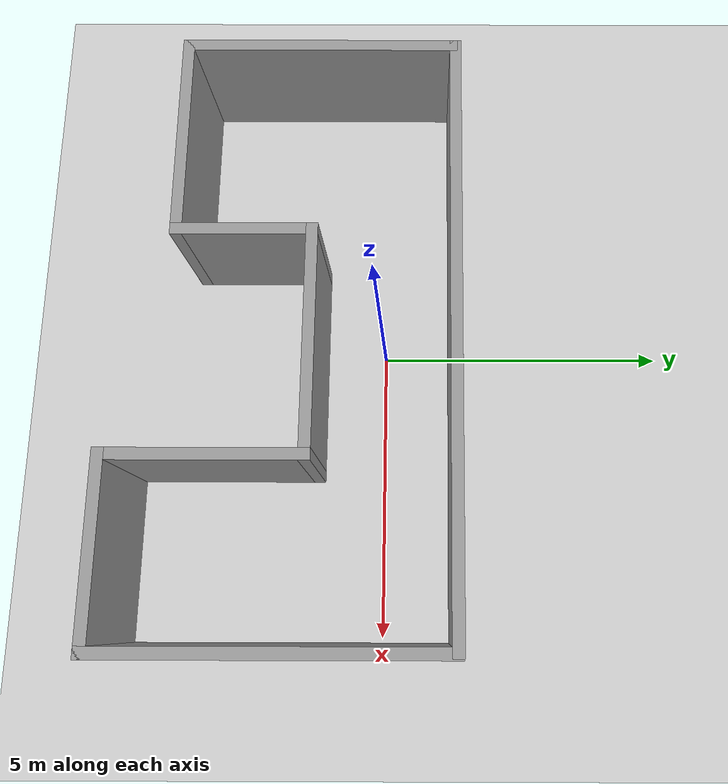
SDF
<sdf version="1.4">
 <world name="default">
  <light name="sun" type="directional">
   <pose>0 0 10 0 -0 0</pose>
   <diffuse>0.8 0.8 0.8 1</diffuse>
   <specular>0.2 0.2 0.2 1</specular>
   <attenuation>
    <range>1000</range>
    <constant>0.9</constant>
    <linear>0.01</linear>
    <quadratic>0.001</quadratic>
   </attenuation>
   <direction>-0.5 0.1 -0.9</direction>
  </light>
  <model name="ground_plane">
   <static>1</static>
   <link name="link">
    <collision name="collision">
     <geometry><plane><normal>0 0 1</normal><size>100 100</size></plane></geometry>
     <surface><friction><ode><mu>100</mu><mu2>50</mu2></ode></friction></surface>
    </collision>
    <visual name="visual">
     <cast_shadows>0</cast_shadows>
     <geometry><plane><normal>0 0 1</normal><size>100 100</size></plane></geometry>
     <material>
      <script><uri>file://media/materials/scripts/gazebo.material</uri><name>Gazebo/Grey</name></script>
     </material>
    </visual>
    <velocity_decay><linear>0</linear><angular>0</angular></velocity_decay>
   </link>
  </model>
  <physics type="ode">
   <max_step_size>0.001</max_step_size>
   <real_time_factor>1</real_time_factor>
   <real_time_update_rate>1000</real_time_update_rate>
   <gravity>0 0 -9.8</gravity>
  </physics>
  <scene><ambient>0.4 0.4 0.4 1</ambient><background>0.7 0.7 0.7 1</background><shadows>1</shadows></scene>
  <spherical_coordinates>
   <surface_model>EARTH_WGS84</surface_model>
   <latitude_deg>0</latitude_deg>
   <longitude_deg>0</longitude_deg>
   <elevation>0</elevation>
   <heading_deg>0</heading_deg>
  </spherical_coordinates>
  <model name="room">
   <link name="Wall_10">
    <collision name="Wall_10_Collision">
     <geometry><box><size>3.99868 0.2 2.5</size></box></geometry>
     <pose>0 0 1.25 0 -0 0</pose>
    </collision>
    <visual name="Wall_10_Visual">
     <pose>0 0 1.25 0 -0 0</pose>
     <geometry><box><size>3.99868 0.2 2.5</size></box></geometry>
     <material>
      <script><uri>file://media/materials/scripts/gazebo.material</uri><name>Gazebo/Grey</name></script>
     </material>
    </visual>
    <velocity_decay><linear>0</linear><angular>0</angular></velocity_decay>
    <pose>-0.709137 -1.17267 0 0 -0 3.14159</pose>
   </link>
   <link name="Wall_11">
    <collision name="Wall_11_Collision">
     <geometry><box><size>2.47814 0.2 2.5</size></box></geometry>
     <pose>0 0 1.25 0 -0 0</pose>
    </collision>
    <visual name="Wall_11_Visual">
     <pose>0 0 1.25 0 -0 0</pose>
     <geometry><box><size>2.47814 0.2 2.5</size></box></geometry>
     <material>
      <script><uri>file://media/materials/scripts/gazebo.material</uri><name>Gazebo/Grey</name></script>
     </material>
    </visual>
    <velocity_decay><linear>0</linear><angular>0</angular></velocity_decay>
    <pose>-2.60848 -2.31164 0 0 0 -1.5708</pose>
   </link>
   <link name="Wall_12">
    <collision name="Wall_12_Collision">
     <geometry><box><size>3.67766 0.2 2.5</size></box></geometry>
     <pose>0 0 1.25 0 -0 0</pose>
    </collision>
    <visual name="Wall_12_Visual">
     <pose>0 0 1.25 0 -0 0</pose>
     <geometry><box><size>3.67766 0.2 2.5</size></box></geometry>
     <material>
      <script><uri>file://media/materials/scripts/gazebo.material</uri><name>Gazebo/Grey</name></script>
     </material>
    </visual>
    <velocity_decay><linear>0</linear><angular>0</angular></velocity_decay>
    <pose>-4.34731 -3.45061 0 0 -0 3.14159</pose>
   </link>
   <link name="Wall_13">
    <collision name="Wall_13_Collision">
     <geometry><box><size>4.82918 0.2 2.5</size></box></geometry>
     <pose>0 0 1.25 0 -0 0</pose>
    </collision>
    <visual name="Wall_13_Visual">
     <pose>0 0 1.25 0 -0 0</pose>
     <geometry><box><size>4.82918 0.2 2.5</size></box></geometry>
     <material>
      <script><uri>file://media/materials/scripts/gazebo.material</uri><name>Gazebo/Grey</name></script>
     </material>
    </visual>
    <velocity_decay><linear>0</linear><angular>0</angular></velocity_decay>
    <pose>-6.08614 -1.13602 0 0 -0 1.5708</pose>
   </link>
   <link name="Wall_5">
    <collision name="Wall_5_Collision">
     <geometry><box><size>10.4468 0.2 2.5</size></box></geometry>
     <pose>0 0 1.25 0 -0 0</pose>
    </collision>
    <visual name="Wall_5_Visual">
     <pose>0 0 1.25 0 -0 0</pose>
     <geometry><box><size>10.4468 0.2 2.5</size></box></geometry>
     <material>
      <script><uri>file://media/materials/scripts/gazebo.material</uri><name>Gazebo/Grey</name></script>
     </material>
    </visual>
    <velocity_decay><linear>0</linear><angular>0</angular></velocity_decay>
    <pose>-0.965378 1.23909 0 0 -0 0</pose>
   </link>
   <link name="Wall_7">
    <collision name="Wall_7_Collision">
     <geometry><box><size>5.84133 0.2 2.5</size></box></geometry>
     <pose>0 0 1.25 0 -0 0</pose>
    </collision>
    <visual name="Wall_7_Visual">
     <pose>0 0 1.25 0 -0 0</pose>
     <geometry><box><size>5.84133 0.2 2.5</size></box></geometry>
     <material>
      <script><uri>file://media/materials/scripts/gazebo.material</uri><name>Gazebo/Grey</name></script>
     </material>
    </visual>
    <velocity_decay><linear>0</linear><angular>0</angular></velocity_decay>
    <pose>4.18521 -1.59299 0 0 0 -1.5708</pose>
   </link>
   <link name="Wall_8">
    <collision name="Wall_8_Collision">
     <geometry><box><size>3.19501 0.2 2.5</size></box></geometry>
     <pose>0 0 1.25 0 -0 0</pose>
    </collision>
    <visual name="Wall_8_Visual">
     <pose>0 0 1.25 0 -0 0</pose>
     <geometry><box><size>3.19501 0.2 2.5</size></box></geometry>
     <material>
      <script><uri>file://media/materials/scripts/gazebo.material</uri><name>Gazebo/Grey</name></script>
     </material>
    </visual>
    <velocity_decay><linear>0</linear><angular>0</angular></velocity_decay>
    <pose>2.68771 -4.41366 0 0 -0 3.14159</pose>
   </link>
   <link name="Wall_9">
    <collision name="Wall_9_Collision">
     <geometry><box><size>3.44113 0.2 2.5</size></box></geometry>
     <pose>0 0 1.25 0 -0 0</pose>
    </collision>
    <visual name="Wall_9_Visual">
     <pose>0 0 1.25 0 -0 0</pose>
     <geometry><box><size>3.44113 0.2 2.5</size></box></geometry>
     <material>
      <script><uri>file://media/materials/scripts/gazebo.material</uri><name>Gazebo/Grey</name></script>
     </material>
    </visual>
    <velocity_decay><linear>0</linear><angular>0</angular></velocity_decay>
    <pose>1.1902 -2.79317 0 0 -0 1.5708</pose>
   </link>
   <static>1</static>
   <pose>1 0 0 0 -0 0</pose>
  </model>
 </world>
</sdf>
